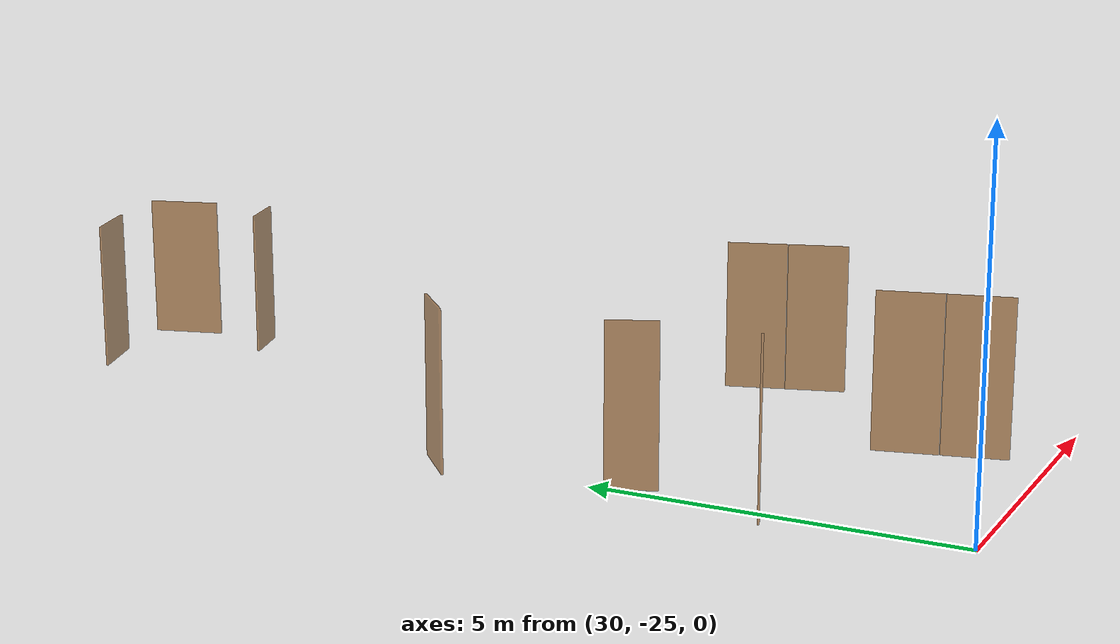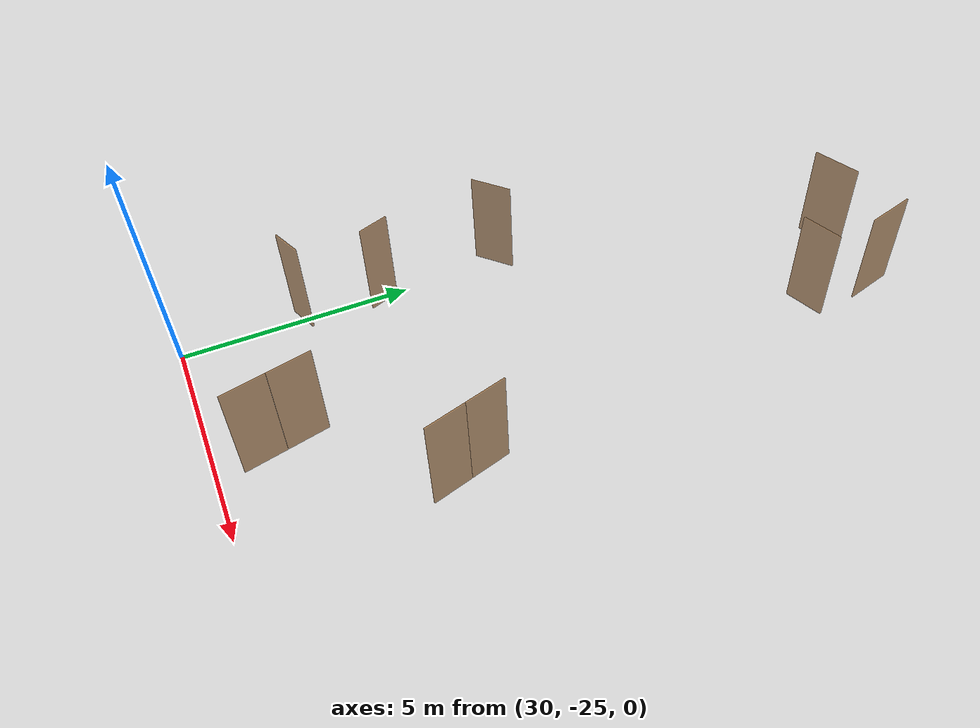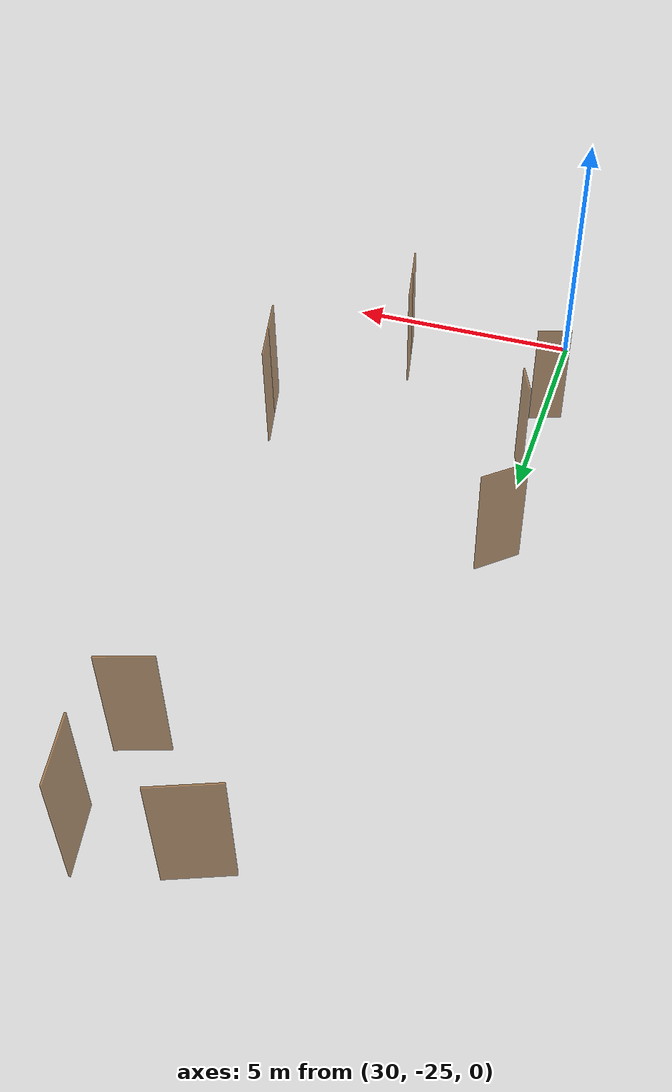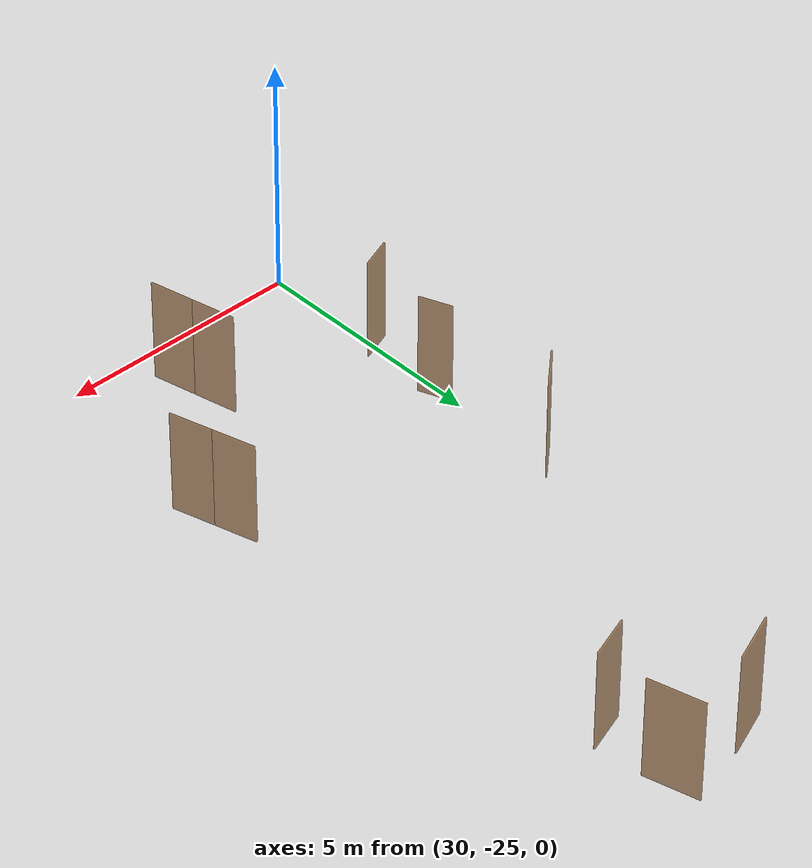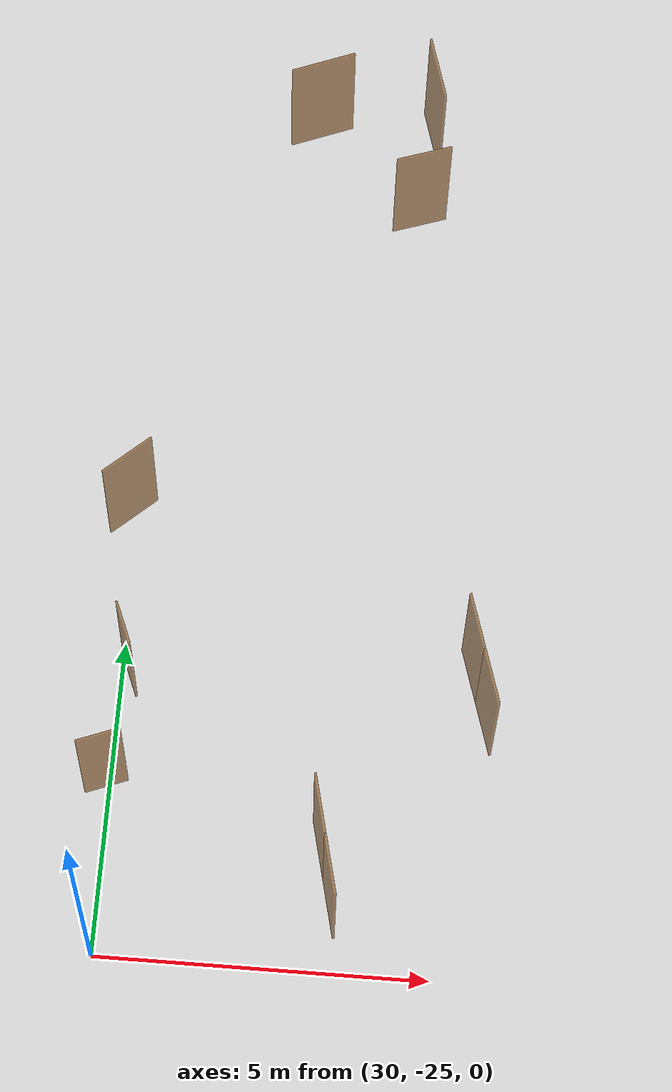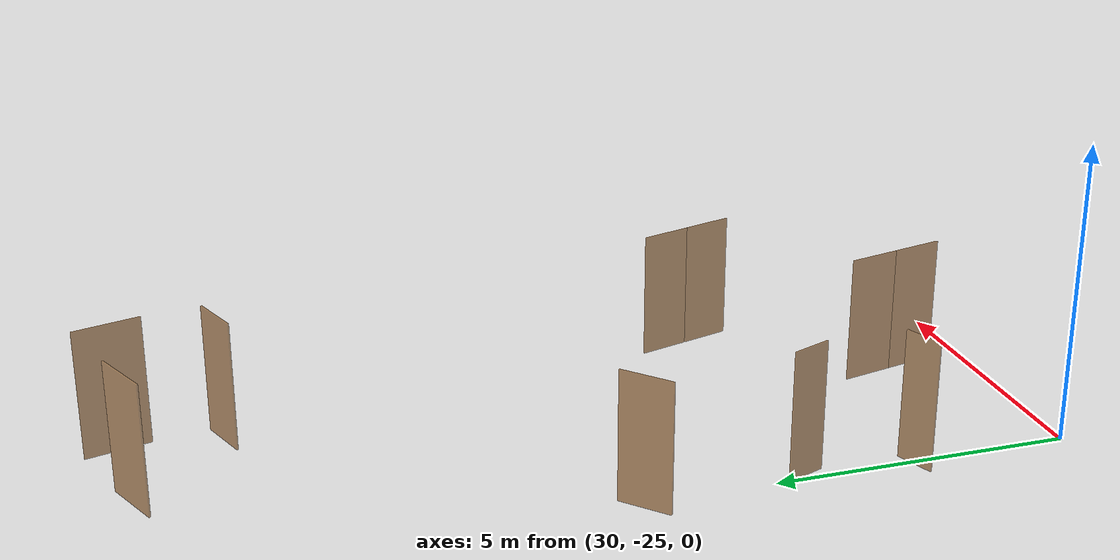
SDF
<sdf version="1.7">
 <world name="world">
  <include><uri>model://sun</uri></include>
  <model name="D25">
   <pose>32.37645474841926 -10.432940364825107 0.0 0 0 -2.7519954427289135</pose>
   <link name="right">
    <pose>0 0 1.11 0 0 0</pose>
    <visual name="right_visual">
     <geometry><box><size>1.083053566463534 0.03 2.2</size></box></geometry>
     <material><ambient>0.5 0.25 0 0.6</ambient><diffuse>0.5 0.25 0 0.6</diffuse></material>
    </visual>
    <collision name="right_collision">
     <geometry><box><size>1.083053566463534 0.03 2.2</size></box></geometry>
     <surface><contact><collide_bitmask>0x02</collide_bitmask></contact></surface>
    </collision>
    <inertial>
     <mass>50.0</mass>
     <inertia><ixx>20.17041666666667</ixx><iyy>25.054187615955758</iyy><izz>4.891270949289085</izz></inertia>
    </inertial>
   </link>
   <joint name="right_joint" type="revolute">
    <parent>world</parent>
    <child>right</child>
    <axis><xyz>0 0 -1</xyz><limit><lower>0</lower><upper>1.57</upper></limit></axis>
    <pose>0.546526783231767 0 0 0 0 0</pose>
   </joint>
   <plugin name="door" filename="libdoor.so">
    <v_max_door>0.5</v_max_door>
    <a_max_door>0.3</a_max_door>
    <a_nom_door>0.15</a_nom_door>
    <dx_min_door>0.01</dx_min_door>
    <f_max_door>500.0</f_max_door>
    <door name="D25" type="SwingDoor" left_joint_name="empty_joint" right_joint_name="right_joint"/>
   </plugin>
  </model>
  <model name="D26">
   <pose>34.11871701698067 -12.059735811384318 0.0 0 0 -2.80193981105218</pose>
   <link name="right">
    <pose>0 0 1.11 0 0 0</pose>
    <visual name="right_visual">
     <geometry><box><size>0.9152366136229035 0.03 2.2</size></box></geometry>
     <material><ambient>0.5 0.25 0 0.6</ambient><diffuse>0.5 0.25 0 0.6</diffuse></material>
    </visual>
    <collision name="right_collision">
     <geometry><box><size>0.9152366136229035 0.03 2.2</size></box></geometry>
     <surface><contact><collide_bitmask>0x02</collide_bitmask></contact></surface>
    </collision>
    <inertial>
     <mass>50.0</mass>
     <inertia><ixx>20.17041666666667</ixx><iyy>23.65690857881634</iyy><izz>3.493991912149667</izz></inertia>
    </inertial>
   </link>
   <joint name="right_joint" type="revolute">
    <parent>world</parent>
    <child>right</child>
    <axis><xyz>0 0 1</xyz><limit><lower>0</lower><upper>1.57</upper></limit></axis>
    <pose>0.4626183068114518 0 0 0 0 0</pose>
   </joint>
   <plugin name="door" filename="libdoor.so">
    <v_max_door>0.5</v_max_door>
    <a_max_door>0.3</a_max_door>
    <a_nom_door>0.15</a_nom_door>
    <dx_min_door>0.01</dx_min_door>
    <f_max_door>500.0</f_max_door>
    <door name="D26" type="SwingDoor" left_joint_name="empty_joint" right_joint_name="right_joint"/>
   </plugin>
  </model>
  <model name="D27">
   <pose>34.24909192645787 -10.394848217360465 0.0 0 0 1.8376123916784597</pose>
   <link name="right">
    <pose>0 0 1.11 0 0 0</pose>
    <visual name="right_visual">
     <geometry><box><size>1.1358998556207032 0.03 2.2</size></box></geometry>
     <material><ambient>0.5 0.25 0 0.6</ambient><diffuse>0.5 0.25 0 0.6</diffuse></material>
    </visual>
    <collision name="right_collision">
     <geometry><box><size>1.1358998556207032 0.03 2.2</size></box></geometry>
     <surface><contact><collide_bitmask>0x02</collide_bitmask></contact></surface>
    </collision>
    <inertial>
     <mass>50.0</mass>
     <inertia><ixx>20.17041666666667</ixx><iyy>25.542785341663063</iyy><izz>5.379868674996393</izz></inertia>
    </inertial>
   </link>
   <joint name="right_joint" type="revolute">
    <parent>world</parent>
    <child>right</child>
    <axis><xyz>0 0 1</xyz><limit><lower>0</lower><upper>1.57</upper></limit></axis>
    <pose>0.5729499278103516 0 0 0 0 0</pose>
   </joint>
   <plugin name="door" filename="libdoor.so">
    <v_max_door>0.5</v_max_door>
    <a_max_door>0.3</a_max_door>
    <a_nom_door>0.15</a_nom_door>
    <dx_min_door>0.01</dx_min_door>
    <f_max_door>500.0</f_max_door>
    <door name="D27" type="SwingDoor" left_joint_name="empty_joint" right_joint_name="right_joint"/>
   </plugin>
  </model>
  <model name="D34">
   <pose>29.903866247812527 -17.791980472637327 0.0 0 0 -2.398090234745197</pose>
   <link name="right">
    <pose>0 0 1.11 0 0 0</pose>
    <visual name="right_visual">
     <geometry><box><size>0.9259382250127158 0.03 2.2</size></box></geometry>
     <material><ambient>0.5 0.25 0 0.6</ambient><diffuse>0.5 0.25 0 0.6</diffuse></material>
    </visual>
    <collision name="right_collision">
     <geometry><box><size>0.9259382250127158 0.03 2.2</size></box></geometry>
     <surface><contact><collide_bitmask>0x02</collide_bitmask></contact></surface>
    </collision>
    <inertial>
     <mass>50.0</mass>
     <inertia><ixx>20.17041666666667</ixx><iyy>23.739006652248747</iyy><izz>3.5760899855820787</izz></inertia>
    </inertial>
   </link>
   <joint name="right_joint" type="revolute">
    <parent>world</parent>
    <child>right</child>
    <axis><xyz>0 0 1</xyz><limit><lower>0</lower><upper>1.57</upper></limit></axis>
    <pose>0.4679691125063579 0 0 0 0 0</pose>
   </joint>
   <plugin name="door" filename="libdoor.so">
    <v_max_door>0.5</v_max_door>
    <a_max_door>0.3</a_max_door>
    <a_nom_door>0.15</a_nom_door>
    <dx_min_door>0.01</dx_min_door>
    <f_max_door>500.0</f_max_door>
    <door name="D34" type="SwingDoor" left_joint_name="empty_joint" right_joint_name="right_joint"/>
   </plugin>
  </model>
  <model name="D36">
   <pose>30.125503593923767 -20.536825795078407 0.0 0 0 -1.1902600534225616</pose>
   <link name="right">
    <pose>0 0 1.11 0 0 0</pose>
    <visual name="right_visual">
     <geometry><box><size>0.6941745408930181 0.03 2.2</size></box></geometry>
     <material><ambient>0.5 0.25 0 0.6</ambient><diffuse>0.5 0.25 0 0.6</diffuse></material>
    </visual>
    <collision name="right_collision">
     <geometry><box><size>0.6941745408930181 0.03 2.2</size></box></geometry>
     <surface><contact><collide_bitmask>0x02</collide_bitmask></contact></surface>
    </collision>
    <inertial>
     <mass>50.0</mass>
     <inertia><ixx>20.17041666666667</ixx><iyy>22.174492888433473</iyy><izz>2.011576221766802</izz></inertia>
    </inertial>
   </link>
   <joint name="right_joint" type="revolute">
    <parent>world</parent>
    <child>right</child>
    <axis><xyz>0 0 -1</xyz><limit><lower>0</lower><upper>1.57</upper></limit></axis>
    <pose>0.35208727044650906 0 0 0 0 0</pose>
   </joint>
   <plugin name="door" filename="libdoor.so">
    <v_max_door>0.5</v_max_door>
    <a_max_door>0.3</a_max_door>
    <a_nom_door>0.15</a_nom_door>
    <dx_min_door>0.01</dx_min_door>
    <f_max_door>500.0</f_max_door>
    <door name="D36" type="SwingDoor" left_joint_name="empty_joint" right_joint_name="right_joint"/>
   </plugin>
  </model>
  <model name="D38">
   <pose>29.94445252398021 -22.333165308701233 0.0 0 0 -2.7697806558378035</pose>
   <link name="right">
    <pose>0 0 1.11 0 0 0</pose>
    <visual name="right_visual">
     <geometry><box><size>0.6849378449050594 0.03 2.2</size></box></geometry>
     <material><ambient>0.5 0.25 0 0.6</ambient><diffuse>0.5 0.25 0 0.6</diffuse></material>
    </visual>
    <collision name="right_collision">
     <geometry><box><size>0.6849378449050594 0.03 2.2</size></box></geometry>
     <surface><contact><collide_bitmask>0x02</collide_bitmask></contact></surface>
    </collision>
    <inertial>
     <mass>50.0</mass>
     <inertia><ixx>20.17041666666667</ixx><iyy>22.121416047429953</iyy><izz>1.9584993807632802</izz></inertia>
    </inertial>
   </link>
   <joint name="right_joint" type="revolute">
    <parent>world</parent>
    <child>right</child>
    <axis><xyz>0 0 1</xyz><limit><lower>0</lower><upper>1.57</upper></limit></axis>
    <pose>0.3474689224525297 0 0 0 0 0</pose>
   </joint>
   <plugin name="door" filename="libdoor.so">
    <v_max_door>0.5</v_max_door>
    <a_max_door>0.3</a_max_door>
    <a_nom_door>0.15</a_nom_door>
    <dx_min_door>0.01</dx_min_door>
    <f_max_door>500.0</f_max_door>
    <door name="D38" type="SwingDoor" left_joint_name="empty_joint" right_joint_name="right_joint"/>
   </plugin>
  </model>
  <model name="DH4">
   <pose>33.34015206842878 -23.56583173543654 0.0 0 0 1.7980422268106873</pose>
   <link name="right">
    <pose>0.46093525913583394 0 1.11 0 0 0</pose>
    <visual name="right_visual">
     <geometry><box><size>0.9118705182716679 0.03 2.2</size></box></geometry>
     <material><ambient>0.5 0.25 0 0.6</ambient><diffuse>0.5 0.25 0 0.6</diffuse></material>
    </visual>
    <collision name="right_collision">
     <geometry><box><size>0.9118705182716679 0.03 2.2</size></box></geometry>
     <surface><contact><collide_bitmask>0x02</collide_bitmask></contact></surface>
    </collision>
    <inertial>
     <mass>50.0</mass>
     <inertia><ixx>20.17041666666667</ixx><iyy>23.63128267538767</iyy><izz>3.468366008721001</izz></inertia>
    </inertial>
   </link>
   <joint name="right_joint" type="revolute">
    <parent>world</parent>
    <child>right</child>
    <axis><xyz>0 0 -1</xyz><limit><lower>0</lower><upper>1.57</upper></limit></axis>
    <pose>0.46093525913583394 0 0 0 0 0</pose>
   </joint>
   <link name="left">
    <pose>-0.46093525913583394 0 1.11 0 0 0</pose>
    <visual name="left_visual">
     <geometry><box><size>0.9118705182716679 0.03 2.2</size></box></geometry>
     <material><ambient>0.5 0.25 0 0.6</ambient><diffuse>0.5 0.25 0 0.6</diffuse></material>
    </visual>
    <collision name="left_collision">
     <geometry><box><size>0.9118705182716679 0.03 2.2</size></box></geometry>
     <surface><contact><collide_bitmask>0x02</collide_bitmask></contact></surface>
    </collision>
    <inertial>
     <mass>50.0</mass>
     <inertia><ixx>20.17041666666667</ixx><iyy>23.63128267538767</iyy><izz>3.468366008721001</izz></inertia>
    </inertial>
   </link>
   <joint name="left_joint" type="revolute">
    <parent>world</parent>
    <child>left</child>
    <axis><xyz>0 0 -1</xyz><limit><lower>-1.57</lower><upper>0</upper></limit></axis>
    <pose>-0.46093525913583394 0 0 0 0 0</pose>
   </joint>
   <plugin name="door" filename="libdoor.so">
    <v_max_door>0.5</v_max_door>
    <a_max_door>0.3</a_max_door>
    <a_nom_door>0.15</a_nom_door>
    <dx_min_door>0.01</dx_min_door>
    <f_max_door>500.0</f_max_door>
    <door name="DH4" type="DoubleSwingDoor" left_joint_name="left_joint" right_joint_name="right_joint"/>
   </plugin>
  </model>
  <model name="DH5">
   <pose>35.47830058385487 -20.54623546245807 0.0 0 0 1.854004947072759</pose>
   <link name="right">
    <pose>0.447290316099331 0 1.11 0 0 0</pose>
    <visual name="right_visual">
     <geometry><box><size>0.884580632198662 0.03 2.2</size></box></geometry>
     <material><ambient>0.5 0.25 0 0.6</ambient><diffuse>0.5 0.25 0 0.6</diffuse></material>
    </visual>
    <collision name="right_collision">
     <geometry><box><size>0.884580632198662 0.03 2.2</size></box></geometry>
     <surface><contact><collide_bitmask>0x02</collide_bitmask></contact></surface>
    </collision>
    <inertial>
     <mass>50.0</mass>
     <inertia><ixx>20.17041666666667</ixx><iyy>23.427012061920774</iyy><izz>3.2640953952541025</izz></inertia>
    </inertial>
   </link>
   <joint name="right_joint" type="revolute">
    <parent>world</parent>
    <child>right</child>
    <axis><xyz>0 0 -1</xyz><limit><lower>0</lower><upper>1.57</upper></limit></axis>
    <pose>0.447290316099331 0 0 0 0 0</pose>
   </joint>
   <link name="left">
    <pose>-0.447290316099331 0 1.11 0 0 0</pose>
    <visual name="left_visual">
     <geometry><box><size>0.884580632198662 0.03 2.2</size></box></geometry>
     <material><ambient>0.5 0.25 0 0.6</ambient><diffuse>0.5 0.25 0 0.6</diffuse></material>
    </visual>
    <collision name="left_collision">
     <geometry><box><size>0.884580632198662 0.03 2.2</size></box></geometry>
     <surface><contact><collide_bitmask>0x02</collide_bitmask></contact></surface>
    </collision>
    <inertial>
     <mass>50.0</mass>
     <inertia><ixx>20.17041666666667</ixx><iyy>23.427012061920774</iyy><izz>3.2640953952541025</izz></inertia>
    </inertial>
   </link>
   <joint name="left_joint" type="revolute">
    <parent>world</parent>
    <child>left</child>
    <axis><xyz>0 0 -1</xyz><limit><lower>-1.57</lower><upper>0</upper></limit></axis>
    <pose>-0.447290316099331 0 0 0 0 0</pose>
   </joint>
   <plugin name="door" filename="libdoor.so">
    <v_max_door>0.5</v_max_door>
    <a_max_door>0.3</a_max_door>
    <a_nom_door>0.15</a_nom_door>
    <dx_min_door>0.01</dx_min_door>
    <f_max_door>500.0</f_max_door>
    <door name="DH5" type="DoubleSwingDoor" left_joint_name="left_joint" right_joint_name="right_joint"/>
   </plugin>
  </model>
 </world>
</sdf>
